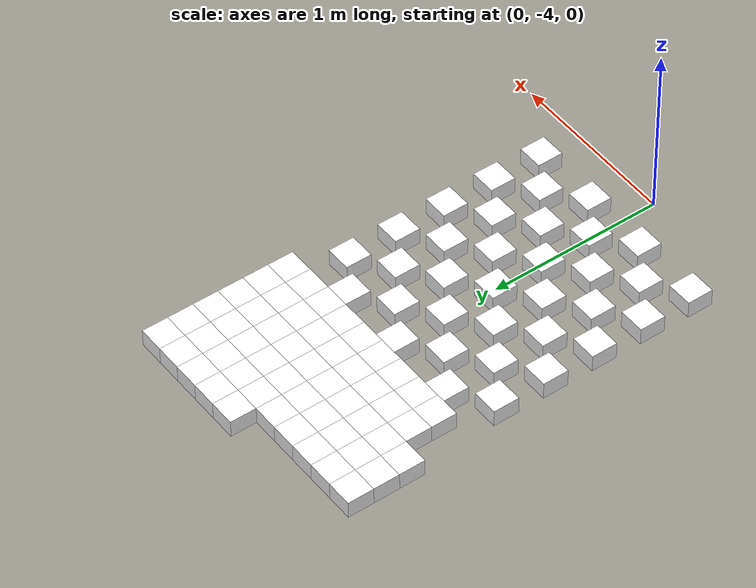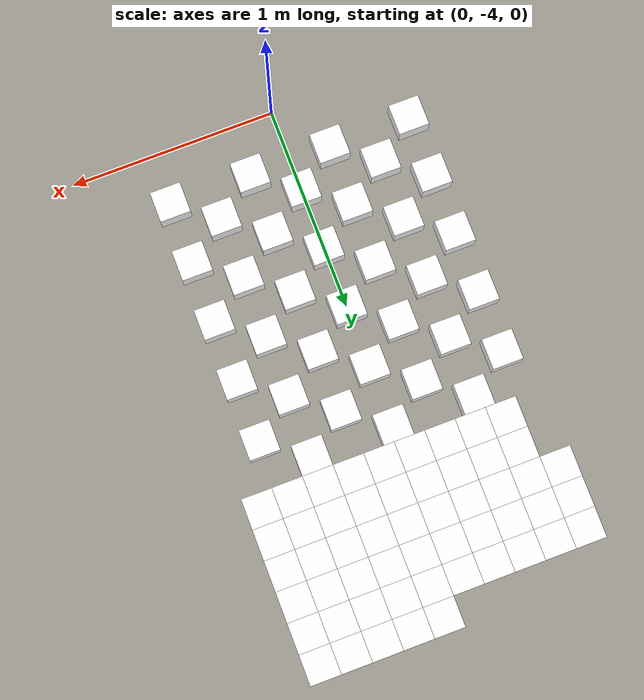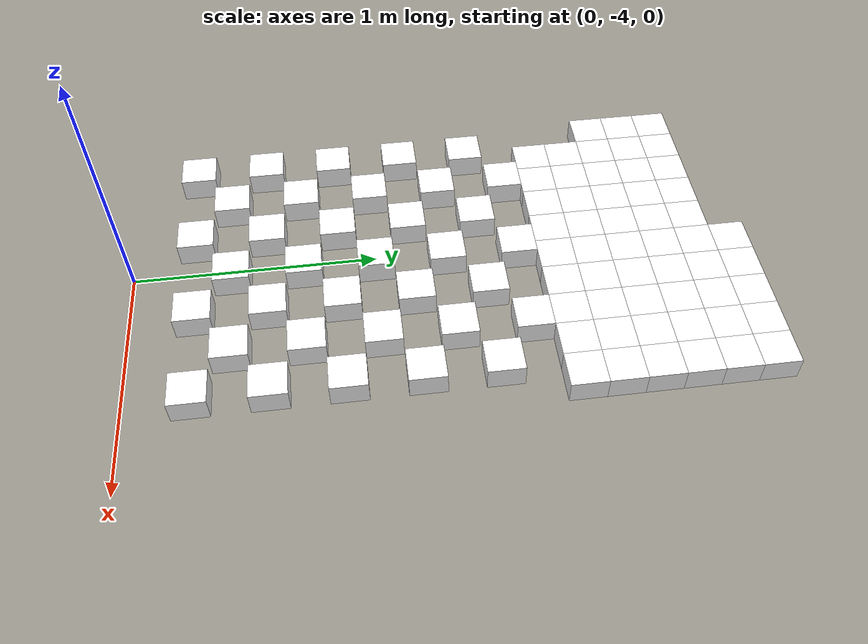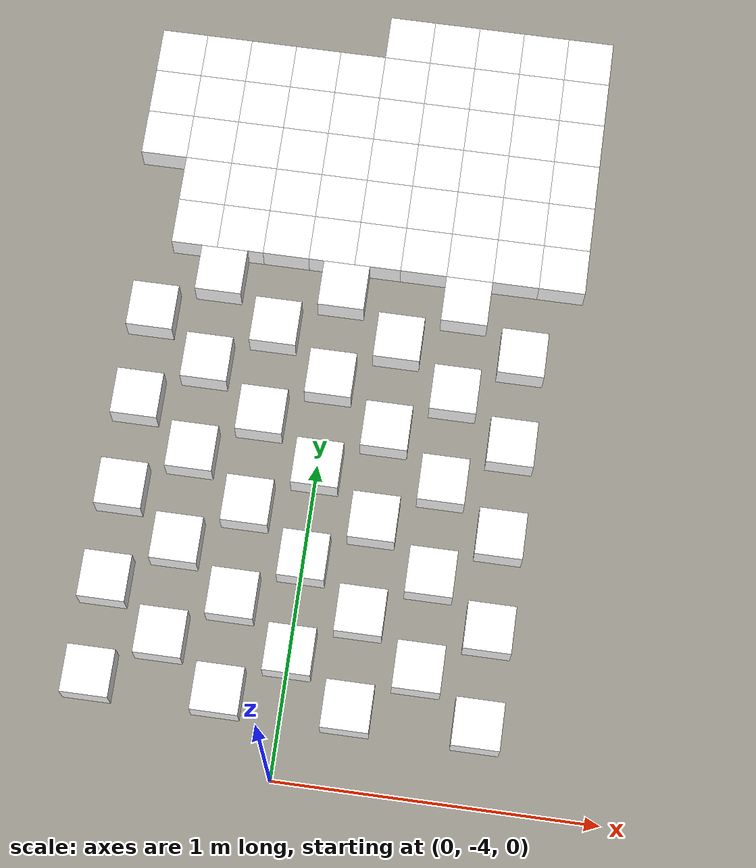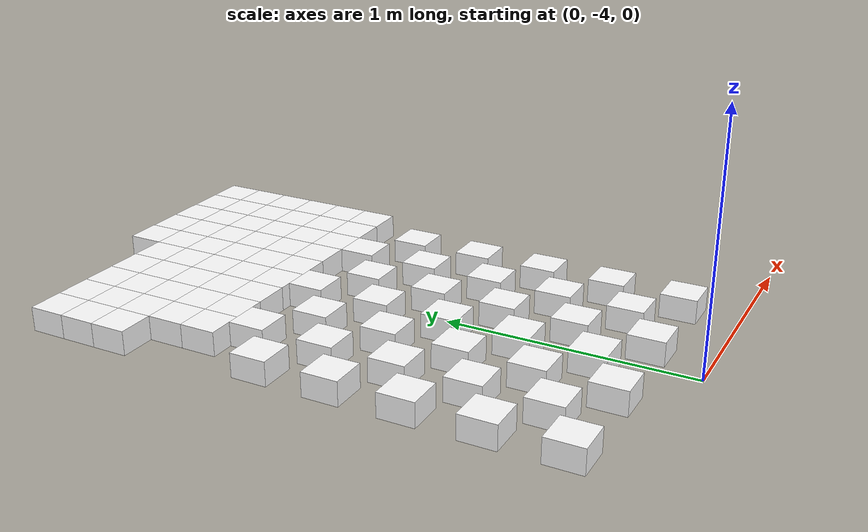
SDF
<sdf version="1.7">
 <world name="default">
  <include><uri>model://sun</uri></include>
  <model name="static_environment">
   <static>true</static>
   <link name="region_195">
    <pose>-0.6502002112096068 -1.6501201146119748 0.0 0.0 0.0 4.7123</pose>
    <collision name="region_195_collision">
     <geometry><box><size>0.15 0.15 0.1</size></box></geometry>
     <surface><friction><ode><mu>1.0</mu><mu2>1.0</mu2></ode></friction></surface>
    </collision>
    <visual name="region_195_visual">
     <geometry><box><size>0.15 0.15 0.1</size></box></geometry>
     <material><ambient>1.0 1.0 1.0 1.0</ambient><diffuse>1.0 1.0 1.0 1.0</diffuse></material>
    </visual>
   </link>
   <link name="region_196">
    <pose>-0.6502135582672928 -1.8001201140181617 0.0 0.0 0.0 4.7123</pose>
    <collision name="region_196_collision">
     <geometry><box><size>0.15 0.15 0.1</size></box></geometry>
     <surface><friction><ode><mu>1.0</mu><mu2>1.0</mu2></ode></friction></surface>
    </collision>
    <visual name="region_196_visual">
     <geometry><box><size>0.15 0.15 0.1</size></box></geometry>
     <material><ambient>1.0 1.0 1.0 1.0</ambient><diffuse>1.0 1.0 1.0 1.0</diffuse></material>
    </visual>
   </link>
   <link name="region_197">
    <pose>-0.6502269053249785 -1.9501201134243487 0.0 0.0 0.0 4.7123</pose>
    <collision name="region_197_collision">
     <geometry><box><size>0.15 0.15 0.1</size></box></geometry>
     <surface><friction><ode><mu>1.0</mu><mu2>1.0</mu2></ode></friction></surface>
    </collision>
    <visual name="region_197_visual">
     <geometry><box><size>0.15 0.15 0.1</size></box></geometry>
     <material><ambient>1.0 1.0 1.0 1.0</ambient><diffuse>1.0 1.0 1.0 1.0</diffuse></material>
    </visual>
   </link>
   <link name="region_215">
    <pose>-0.5002002118034199 -1.6501334616696606 0.0 0.0 0.0 4.7123</pose>
    <collision name="region_215_collision">
     <geometry><box><size>0.15 0.15 0.1</size></box></geometry>
     <surface><friction><ode><mu>1.0</mu><mu2>1.0</mu2></ode></friction></surface>
    </collision>
    <visual name="region_215_visual">
     <geometry><box><size>0.15 0.15 0.1</size></box></geometry>
     <material><ambient>1.0 1.0 1.0 1.0</ambient><diffuse>1.0 1.0 1.0 1.0</diffuse></material>
    </visual>
   </link>
   <link name="region_216">
    <pose>-0.5002135588611059 -1.8001334610758475 0.0 0.0 0.0 4.7123</pose>
    <collision name="region_216_collision">
     <geometry><box><size>0.15 0.15 0.1</size></box></geometry>
     <surface><friction><ode><mu>1.0</mu><mu2>1.0</mu2></ode></friction></surface>
    </collision>
    <visual name="region_216_visual">
     <geometry><box><size>0.15 0.15 0.1</size></box></geometry>
     <material><ambient>1.0 1.0 1.0 1.0</ambient><diffuse>1.0 1.0 1.0 1.0</diffuse></material>
    </visual>
   </link>
   <link name="region_217">
    <pose>-0.5002269059187916 -1.9501334604820344 0.0 0.0 0.0 4.7123</pose>
    <collision name="region_217_collision">
     <geometry><box><size>0.15 0.15 0.1</size></box></geometry>
     <surface><friction><ode><mu>1.0</mu><mu2>1.0</mu2></ode></friction></surface>
    </collision>
    <visual name="region_217_visual">
     <geometry><box><size>0.15 0.15 0.1</size></box></geometry>
     <material><ambient>1.0 1.0 1.0 1.0</ambient><diffuse>1.0 1.0 1.0 1.0</diffuse></material>
    </visual>
   </link>
   <link name="region_218">
    <pose>-0.5002402529764776 -2.100133459888221 0.0 0.0 0.0 4.7123</pose>
    <collision name="region_218_collision">
     <geometry><box><size>0.15 0.15 0.1</size></box></geometry>
     <surface><friction><ode><mu>1.0</mu><mu2>1.0</mu2></ode></friction></surface>
    </collision>
    <visual name="region_218_visual">
     <geometry><box><size>0.15 0.15 0.1</size></box></geometry>
     <material><ambient>1.0 1.0 1.0 1.0</ambient><diffuse>1.0 1.0 1.0 1.0</diffuse></material>
    </visual>
   </link>
   <link name="region_219">
    <pose>-0.5002536000341633 -2.250133459294408 0.0 0.0 0.0 4.7123</pose>
    <collision name="region_219_collision">
     <geometry><box><size>0.15 0.15 0.1</size></box></geometry>
     <surface><friction><ode><mu>1.0</mu><mu2>1.0</mu2></ode></friction></surface>
    </collision>
    <visual name="region_219_visual">
     <geometry><box><size>0.15 0.15 0.1</size></box></geometry>
     <material><ambient>1.0 1.0 1.0 1.0</ambient><diffuse>1.0 1.0 1.0 1.0</diffuse></material>
    </visual>
   </link>
   <link name="region_235">
    <pose>-0.3502002123972332 -1.6501468087273463 0.0 0.0 0.0 4.7123</pose>
    <collision name="region_235_collision">
     <geometry><box><size>0.15 0.15 0.1</size></box></geometry>
     <surface><friction><ode><mu>1.0</mu><mu2>1.0</mu2></ode></friction></surface>
    </collision>
    <visual name="region_235_visual">
     <geometry><box><size>0.15 0.15 0.1</size></box></geometry>
     <material><ambient>1.0 1.0 1.0 1.0</ambient><diffuse>1.0 1.0 1.0 1.0</diffuse></material>
    </visual>
   </link>
   <link name="region_236">
    <pose>-0.35021355945491917 -1.8001468081335332 0.0 0.0 0.0 4.7123</pose>
    <collision name="region_236_collision">
     <geometry><box><size>0.15 0.15 0.1</size></box></geometry>
     <surface><friction><ode><mu>1.0</mu><mu2>1.0</mu2></ode></friction></surface>
    </collision>
    <visual name="region_236_visual">
     <geometry><box><size>0.15 0.15 0.1</size></box></geometry>
     <material><ambient>1.0 1.0 1.0 1.0</ambient><diffuse>1.0 1.0 1.0 1.0</diffuse></material>
    </visual>
   </link>
   <link name="region_237">
    <pose>-0.3502269065126049 -1.9501468075397201 0.0 0.0 0.0 4.7123</pose>
    <collision name="region_237_collision">
     <geometry><box><size>0.15 0.15 0.1</size></box></geometry>
     <surface><friction><ode><mu>1.0</mu><mu2>1.0</mu2></ode></friction></surface>
    </collision>
    <visual name="region_237_visual">
     <geometry><box><size>0.15 0.15 0.1</size></box></geometry>
     <material><ambient>1.0 1.0 1.0 1.0</ambient><diffuse>1.0 1.0 1.0 1.0</diffuse></material>
    </visual>
   </link>
   <link name="region_238">
    <pose>-0.35024025357029087 -2.1001468069459066 0.0 0.0 0.0 4.7123</pose>
    <collision name="region_238_collision">
     <geometry><box><size>0.15 0.15 0.1</size></box></geometry>
     <surface><friction><ode><mu>1.0</mu><mu2>1.0</mu2></ode></friction></surface>
    </collision>
    <visual name="region_238_visual">
     <geometry><box><size>0.15 0.15 0.1</size></box></geometry>
     <material><ambient>1.0 1.0 1.0 1.0</ambient><diffuse>1.0 1.0 1.0 1.0</diffuse></material>
    </visual>
   </link>
   <link name="region_239">
    <pose>-0.3502536006279766 -2.2501468063520935 0.0 0.0 0.0 4.7123</pose>
    <collision name="region_239_collision">
     <geometry><box><size>0.15 0.15 0.1</size></box></geometry>
     <surface><friction><ode><mu>1.0</mu><mu2>1.0</mu2></ode></friction></surface>
    </collision>
    <visual name="region_239_visual">
     <geometry><box><size>0.15 0.15 0.1</size></box></geometry>
     <material><ambient>1.0 1.0 1.0 1.0</ambient><diffuse>1.0 1.0 1.0 1.0</diffuse></material>
    </visual>
   </link>
   <link name="region_255">
    <pose>-0.2002002129910465 -1.6501601557850325 0.0 0.0 0.0 4.7123</pose>
    <collision name="region_255_collision">
     <geometry><box><size>0.15 0.15 0.1</size></box></geometry>
     <surface><friction><ode><mu>1.0</mu><mu2>1.0</mu2></ode></friction></surface>
    </collision>
    <visual name="region_255_visual">
     <geometry><box><size>0.15 0.15 0.1</size></box></geometry>
     <material><ambient>1.0 1.0 1.0 1.0</ambient><diffuse>1.0 1.0 1.0 1.0</diffuse></material>
    </visual>
   </link>
   <link name="region_256">
    <pose>-0.20021356004873248 -1.8001601551912194 0.0 0.0 0.0 4.7123</pose>
    <collision name="region_256_collision">
     <geometry><box><size>0.15 0.15 0.1</size></box></geometry>
     <surface><friction><ode><mu>1.0</mu><mu2>1.0</mu2></ode></friction></surface>
    </collision>
    <visual name="region_256_visual">
     <geometry><box><size>0.15 0.15 0.1</size></box></geometry>
     <material><ambient>1.0 1.0 1.0 1.0</ambient><diffuse>1.0 1.0 1.0 1.0</diffuse></material>
    </visual>
   </link>
   <link name="region_257">
    <pose>-0.20022690710641822 -1.9501601545974063 0.0 0.0 0.0 4.7123</pose>
    <collision name="region_257_collision">
     <geometry><box><size>0.15 0.15 0.1</size></box></geometry>
     <surface><friction><ode><mu>1.0</mu><mu2>1.0</mu2></ode></friction></surface>
    </collision>
    <visual name="region_257_visual">
     <geometry><box><size>0.15 0.15 0.1</size></box></geometry>
     <material><ambient>1.0 1.0 1.0 1.0</ambient><diffuse>1.0 1.0 1.0 1.0</diffuse></material>
    </visual>
   </link>
   <link name="region_258">
    <pose>-0.20024025416410418 -2.100160154003593 0.0 0.0 0.0 4.7123</pose>
    <collision name="region_258_collision">
     <geometry><box><size>0.15 0.15 0.1</size></box></geometry>
     <surface><friction><ode><mu>1.0</mu><mu2>1.0</mu2></ode></friction></surface>
    </collision>
    <visual name="region_258_visual">
     <geometry><box><size>0.15 0.15 0.1</size></box></geometry>
     <material><ambient>1.0 1.0 1.0 1.0</ambient><diffuse>1.0 1.0 1.0 1.0</diffuse></material>
    </visual>
   </link>
   <link name="region_259">
    <pose>-0.20025360122178992 -2.2501601534097797 0.0 0.0 0.0 4.7123</pose>
    <collision name="region_259_collision">
     <geometry><box><size>0.15 0.15 0.1</size></box></geometry>
     <surface><friction><ode><mu>1.0</mu><mu2>1.0</mu2></ode></friction></surface>
    </collision>
    <visual name="region_259_visual">
     <geometry><box><size>0.15 0.15 0.1</size></box></geometry>
     <material><ambient>1.0 1.0 1.0 1.0</ambient><diffuse>1.0 1.0 1.0 1.0</diffuse></material>
    </visual>
   </link>
   <link name="region_275">
    <pose>-0.05020021358485982 -1.6501735028427182 0.0 0.0 0.0 4.7123</pose>
    <collision name="region_275_collision">
     <geometry><box><size>0.15 0.15 0.1</size></box></geometry>
     <surface><friction><ode><mu>1.0</mu><mu2>1.0</mu2></ode></friction></surface>
    </collision>
    <visual name="region_275_visual">
     <geometry><box><size>0.15 0.15 0.1</size></box></geometry>
     <material><ambient>1.0 1.0 1.0 1.0</ambient><diffuse>1.0 1.0 1.0 1.0</diffuse></material>
    </visual>
   </link>
   <link name="region_276">
    <pose>-0.050213560642545785 -1.8001735022489052 0.0 0.0 0.0 4.7123</pose>
    <collision name="region_276_collision">
     <geometry><box><size>0.15 0.15 0.1</size></box></geometry>
     <surface><friction><ode><mu>1.0</mu><mu2>1.0</mu2></ode></friction></surface>
    </collision>
    <visual name="region_276_visual">
     <geometry><box><size>0.15 0.15 0.1</size></box></geometry>
     <material><ambient>1.0 1.0 1.0 1.0</ambient><diffuse>1.0 1.0 1.0 1.0</diffuse></material>
    </visual>
   </link>
   <link name="region_277">
    <pose>-0.05022690770023153 -1.950173501655092 0.0 0.0 0.0 4.7123</pose>
    <collision name="region_277_collision">
     <geometry><box><size>0.15 0.15 0.1</size></box></geometry>
     <surface><friction><ode><mu>1.0</mu><mu2>1.0</mu2></ode></friction></surface>
    </collision>
    <visual name="region_277_visual">
     <geometry><box><size>0.15 0.15 0.1</size></box></geometry>
     <material><ambient>1.0 1.0 1.0 1.0</ambient><diffuse>1.0 1.0 1.0 1.0</diffuse></material>
    </visual>
   </link>
   <link name="region_278">
    <pose>-0.05024025475791749 -2.1001735010612785 0.0 0.0 0.0 4.7123</pose>
    <collision name="region_278_collision">
     <geometry><box><size>0.15 0.15 0.1</size></box></geometry>
     <surface><friction><ode><mu>1.0</mu><mu2>1.0</mu2></ode></friction></surface>
    </collision>
    <visual name="region_278_visual">
     <geometry><box><size>0.15 0.15 0.1</size></box></geometry>
     <material><ambient>1.0 1.0 1.0 1.0</ambient><diffuse>1.0 1.0 1.0 1.0</diffuse></material>
    </visual>
   </link>
   <link name="region_279">
    <pose>-0.05025360181560323 -2.2501735004674654 0.0 0.0 0.0 4.7123</pose>
    <collision name="region_279_collision">
     <geometry><box><size>0.15 0.15 0.1</size></box></geometry>
     <surface><friction><ode><mu>1.0</mu><mu2>1.0</mu2></ode></friction></surface>
    </collision>
    <visual name="region_279_visual">
     <geometry><box><size>0.15 0.15 0.1</size></box></geometry>
     <material><ambient>1.0 1.0 1.0 1.0</ambient><diffuse>1.0 1.0 1.0 1.0</diffuse></material>
    </visual>
   </link>
   <link name="region_294">
    <pose>0.09981313287901328 -1.5001868504942175 0.0 0.0 0.0 4.7123</pose>
    <collision name="region_294_collision">
     <geometry><box><size>0.15 0.15 0.1</size></box></geometry>
     <surface><friction><ode><mu>1.0</mu><mu2>1.0</mu2></ode></friction></surface>
    </collision>
    <visual name="region_294_visual">
     <geometry><box><size>0.15 0.15 0.1</size></box></geometry>
     <material><ambient>1.0 1.0 1.0 1.0</ambient><diffuse>1.0 1.0 1.0 1.0</diffuse></material>
    </visual>
   </link>
   <link name="region_295">
    <pose>0.09979978582132709 -1.650186849900404 0.0 0.0 0.0 4.7123</pose>
    <collision name="region_295_collision">
     <geometry><box><size>0.15 0.15 0.1</size></box></geometry>
     <surface><friction><ode><mu>1.0</mu><mu2>1.0</mu2></ode></friction></surface>
    </collision>
    <visual name="region_295_visual">
     <geometry><box><size>0.15 0.15 0.1</size></box></geometry>
     <material><ambient>1.0 1.0 1.0 1.0</ambient><diffuse>1.0 1.0 1.0 1.0</diffuse></material>
    </visual>
   </link>
   <link name="region_296">
    <pose>0.09978643876364135 -1.800186849306591 0.0 0.0 0.0 4.7123</pose>
    <collision name="region_296_collision">
     <geometry><box><size>0.15 0.15 0.1</size></box></geometry>
     <surface><friction><ode><mu>1.0</mu><mu2>1.0</mu2></ode></friction></surface>
    </collision>
    <visual name="region_296_visual">
     <geometry><box><size>0.15 0.15 0.1</size></box></geometry>
     <material><ambient>1.0 1.0 1.0 1.0</ambient><diffuse>1.0 1.0 1.0 1.0</diffuse></material>
    </visual>
   </link>
   <link name="region_297">
    <pose>0.09977309170595561 -1.9501868487127778 0.0 0.0 0.0 4.7123</pose>
    <collision name="region_297_collision">
     <geometry><box><size>0.15 0.15 0.1</size></box></geometry>
     <surface><friction><ode><mu>1.0</mu><mu2>1.0</mu2></ode></friction></surface>
    </collision>
    <visual name="region_297_visual">
     <geometry><box><size>0.15 0.15 0.1</size></box></geometry>
     <material><ambient>1.0 1.0 1.0 1.0</ambient><diffuse>1.0 1.0 1.0 1.0</diffuse></material>
    </visual>
   </link>
   <link name="region_298">
    <pose>0.09975974464826987 -2.1001868481189643 0.0 0.0 0.0 4.7123</pose>
    <collision name="region_298_collision">
     <geometry><box><size>0.15 0.15 0.1</size></box></geometry>
     <surface><friction><ode><mu>1.0</mu><mu2>1.0</mu2></ode></friction></surface>
    </collision>
    <visual name="region_298_visual">
     <geometry><box><size>0.15 0.15 0.1</size></box></geometry>
     <material><ambient>1.0 1.0 1.0 1.0</ambient><diffuse>1.0 1.0 1.0 1.0</diffuse></material>
    </visual>
   </link>
   <link name="region_299">
    <pose>0.09974639759058368 -2.250186847525151 0.0 0.0 0.0 4.7123</pose>
    <collision name="region_299_collision">
     <geometry><box><size>0.15 0.15 0.1</size></box></geometry>
     <surface><friction><ode><mu>1.0</mu><mu2>1.0</mu2></ode></friction></surface>
    </collision>
    <visual name="region_299_visual">
     <geometry><box><size>0.15 0.15 0.1</size></box></geometry>
     <material><ambient>1.0 1.0 1.0 1.0</ambient><diffuse>1.0 1.0 1.0 1.0</diffuse></material>
    </visual>
   </link>
   <link name="region_314">
    <pose>0.24981313228519975 -1.5002001975519037 0.0 0.0 0.0 4.7123</pose>
    <collision name="region_314_collision">
     <geometry><box><size>0.15 0.15 0.1</size></box></geometry>
     <surface><friction><ode><mu>1.0</mu><mu2>1.0</mu2></ode></friction></surface>
    </collision>
    <visual name="region_314_visual">
     <geometry><box><size>0.15 0.15 0.1</size></box></geometry>
     <material><ambient>1.0 1.0 1.0 1.0</ambient><diffuse>1.0 1.0 1.0 1.0</diffuse></material>
    </visual>
   </link>
   <link name="region_315">
    <pose>0.24979978522751356 -1.6502001969580902 0.0 0.0 0.0 4.7123</pose>
    <collision name="region_315_collision">
     <geometry><box><size>0.15 0.15 0.1</size></box></geometry>
     <surface><friction><ode><mu>1.0</mu><mu2>1.0</mu2></ode></friction></surface>
    </collision>
    <visual name="region_315_visual">
     <geometry><box><size>0.15 0.15 0.1</size></box></geometry>
     <material><ambient>1.0 1.0 1.0 1.0</ambient><diffuse>1.0 1.0 1.0 1.0</diffuse></material>
    </visual>
   </link>
   <link name="region_316">
    <pose>0.24978643816982782 -1.800200196364277 0.0 0.0 0.0 4.7123</pose>
    <collision name="region_316_collision">
     <geometry><box><size>0.15 0.15 0.1</size></box></geometry>
     <surface><friction><ode><mu>1.0</mu><mu2>1.0</mu2></ode></friction></surface>
    </collision>
    <visual name="region_316_visual">
     <geometry><box><size>0.15 0.15 0.1</size></box></geometry>
     <material><ambient>1.0 1.0 1.0 1.0</ambient><diffuse>1.0 1.0 1.0 1.0</diffuse></material>
    </visual>
   </link>
   <link name="region_317">
    <pose>0.24977309111214208 -1.950200195770464 0.0 0.0 0.0 4.7123</pose>
    <collision name="region_317_collision">
     <geometry><box><size>0.15 0.15 0.1</size></box></geometry>
     <surface><friction><ode><mu>1.0</mu><mu2>1.0</mu2></ode></friction></surface>
    </collision>
    <visual name="region_317_visual">
     <geometry><box><size>0.15 0.15 0.1</size></box></geometry>
     <material><ambient>1.0 1.0 1.0 1.0</ambient><diffuse>1.0 1.0 1.0 1.0</diffuse></material>
    </visual>
   </link>
   <link name="region_318">
    <pose>0.24975974405445633 -2.1002001951766505 0.0 0.0 0.0 4.7123</pose>
    <collision name="region_318_collision">
     <geometry><box><size>0.15 0.15 0.1</size></box></geometry>
     <surface><friction><ode><mu>1.0</mu><mu2>1.0</mu2></ode></friction></surface>
    </collision>
    <visual name="region_318_visual">
     <geometry><box><size>0.15 0.15 0.1</size></box></geometry>
     <material><ambient>1.0 1.0 1.0 1.0</ambient><diffuse>1.0 1.0 1.0 1.0</diffuse></material>
    </visual>
   </link>
   <link name="region_319">
    <pose>0.24974639699677015 -2.2502001945828374 0.0 0.0 0.0 4.7123</pose>
    <collision name="region_319_collision">
     <geometry><box><size>0.15 0.15 0.1</size></box></geometry>
     <surface><friction><ode><mu>1.0</mu><mu2>1.0</mu2></ode></friction></surface>
    </collision>
    <visual name="region_319_visual">
     <geometry><box><size>0.15 0.15 0.1</size></box></geometry>
     <material><ambient>1.0 1.0 1.0 1.0</ambient><diffuse>1.0 1.0 1.0 1.0</diffuse></material>
    </visual>
   </link>
   <link name="region_334">
    <pose>0.39981313169138666 -1.5002135446095894 0.0 0.0 0.0 4.7123</pose>
    <collision name="region_334_collision">
     <geometry><box><size>0.15 0.15 0.1</size></box></geometry>
     <surface><friction><ode><mu>1.0</mu><mu2>1.0</mu2></ode></friction></surface>
    </collision>
    <visual name="region_334_visual">
     <geometry><box><size>0.15 0.15 0.1</size></box></geometry>
     <material><ambient>1.0 1.0 1.0 1.0</ambient><diffuse>1.0 1.0 1.0 1.0</diffuse></material>
    </visual>
   </link>
   <link name="region_335">
    <pose>0.3997997846337005 -1.650213544015776 0.0 0.0 0.0 4.7123</pose>
    <collision name="region_335_collision">
     <geometry><box><size>0.15 0.15 0.1</size></box></geometry>
     <surface><friction><ode><mu>1.0</mu><mu2>1.0</mu2></ode></friction></surface>
    </collision>
    <visual name="region_335_visual">
     <geometry><box><size>0.15 0.15 0.1</size></box></geometry>
     <material><ambient>1.0 1.0 1.0 1.0</ambient><diffuse>1.0 1.0 1.0 1.0</diffuse></material>
    </visual>
   </link>
   <link name="region_336">
    <pose>0.39978643757601473 -1.8002135434219628 0.0 0.0 0.0 4.7123</pose>
    <collision name="region_336_collision">
     <geometry><box><size>0.15 0.15 0.1</size></box></geometry>
     <surface><friction><ode><mu>1.0</mu><mu2>1.0</mu2></ode></friction></surface>
    </collision>
    <visual name="region_336_visual">
     <geometry><box><size>0.15 0.15 0.1</size></box></geometry>
     <material><ambient>1.0 1.0 1.0 1.0</ambient><diffuse>1.0 1.0 1.0 1.0</diffuse></material>
    </visual>
   </link>
   <link name="region_337">
    <pose>0.399773090518329 -1.9502135428281497 0.0 0.0 0.0 4.7123</pose>
    <collision name="region_337_collision">
     <geometry><box><size>0.15 0.15 0.1</size></box></geometry>
     <surface><friction><ode><mu>1.0</mu><mu2>1.0</mu2></ode></friction></surface>
    </collision>
    <visual name="region_337_visual">
     <geometry><box><size>0.15 0.15 0.1</size></box></geometry>
     <material><ambient>1.0 1.0 1.0 1.0</ambient><diffuse>1.0 1.0 1.0 1.0</diffuse></material>
    </visual>
   </link>
   <link name="region_338">
    <pose>0.39975974346064325 -2.100213542234336 0.0 0.0 0.0 4.7123</pose>
    <collision name="region_338_collision">
     <geometry><box><size>0.15 0.15 0.1</size></box></geometry>
     <surface><friction><ode><mu>1.0</mu><mu2>1.0</mu2></ode></friction></surface>
    </collision>
    <visual name="region_338_visual">
     <geometry><box><size>0.15 0.15 0.1</size></box></geometry>
     <material><ambient>1.0 1.0 1.0 1.0</ambient><diffuse>1.0 1.0 1.0 1.0</diffuse></material>
    </visual>
   </link>
   <link name="region_339">
    <pose>0.39974639640295706 -2.250213541640523 0.0 0.0 0.0 4.7123</pose>
    <collision name="region_339_collision">
     <geometry><box><size>0.15 0.15 0.1</size></box></geometry>
     <surface><friction><ode><mu>1.0</mu><mu2>1.0</mu2></ode></friction></surface>
    </collision>
    <visual name="region_339_visual">
     <geometry><box><size>0.15 0.15 0.1</size></box></geometry>
     <material><ambient>1.0 1.0 1.0 1.0</ambient><diffuse>1.0 1.0 1.0 1.0</diffuse></material>
    </visual>
   </link>
   <link name="region_354">
    <pose>0.5498131310975736 -1.5002268916672752 0.0 0.0 0.0 4.7123</pose>
    <collision name="region_354_collision">
     <geometry><box><size>0.15 0.15 0.1</size></box></geometry>
     <surface><friction><ode><mu>1.0</mu><mu2>1.0</mu2></ode></friction></surface>
    </collision>
    <visual name="region_354_visual">
     <geometry><box><size>0.15 0.15 0.1</size></box></geometry>
     <material><ambient>1.0 1.0 1.0 1.0</ambient><diffuse>1.0 1.0 1.0 1.0</diffuse></material>
    </visual>
   </link>
   <link name="region_355">
    <pose>0.5497997840398874 -1.6502268910734617 0.0 0.0 0.0 4.7123</pose>
    <collision name="region_355_collision">
     <geometry><box><size>0.15 0.15 0.1</size></box></geometry>
     <surface><friction><ode><mu>1.0</mu><mu2>1.0</mu2></ode></friction></surface>
    </collision>
    <visual name="region_355_visual">
     <geometry><box><size>0.15 0.15 0.1</size></box></geometry>
     <material><ambient>1.0 1.0 1.0 1.0</ambient><diffuse>1.0 1.0 1.0 1.0</diffuse></material>
    </visual>
   </link>
   <link name="region_356">
    <pose>0.5497864369822016 -1.8002268904796486 0.0 0.0 0.0 4.7123</pose>
    <collision name="region_356_collision">
     <geometry><box><size>0.15 0.15 0.1</size></box></geometry>
     <surface><friction><ode><mu>1.0</mu><mu2>1.0</mu2></ode></friction></surface>
    </collision>
    <visual name="region_356_visual">
     <geometry><box><size>0.15 0.15 0.1</size></box></geometry>
     <material><ambient>1.0 1.0 1.0 1.0</ambient><diffuse>1.0 1.0 1.0 1.0</diffuse></material>
    </visual>
   </link>
   <link name="region_357">
    <pose>0.5497730899245159 -1.9502268898858355 0.0 0.0 0.0 4.7123</pose>
    <collision name="region_357_collision">
     <geometry><box><size>0.15 0.15 0.1</size></box></geometry>
     <surface><friction><ode><mu>1.0</mu><mu2>1.0</mu2></ode></friction></surface>
    </collision>
    <visual name="region_357_visual">
     <geometry><box><size>0.15 0.15 0.1</size></box></geometry>
     <material><ambient>1.0 1.0 1.0 1.0</ambient><diffuse>1.0 1.0 1.0 1.0</diffuse></material>
    </visual>
   </link>
   <link name="region_358">
    <pose>0.5497597428668302 -2.100226889292022 0.0 0.0 0.0 4.7123</pose>
    <collision name="region_358_collision">
     <geometry><box><size>0.15 0.15 0.1</size></box></geometry>
     <surface><friction><ode><mu>1.0</mu><mu2>1.0</mu2></ode></friction></surface>
    </collision>
    <visual name="region_358_visual">
     <geometry><box><size>0.15 0.15 0.1</size></box></geometry>
     <material><ambient>1.0 1.0 1.0 1.0</ambient><diffuse>1.0 1.0 1.0 1.0</diffuse></material>
    </visual>
   </link>
   <link name="region_359">
    <pose>0.549746395809144 -2.250226888698209 0.0 0.0 0.0 4.7123</pose>
    <collision name="region_359_collision">
     <geometry><box><size>0.15 0.15 0.1</size></box></geometry>
     <surface><friction><ode><mu>1.0</mu><mu2>1.0</mu2></ode></friction></surface>
    </collision>
    <visual name="region_359_visual">
     <geometry><box><size>0.15 0.15 0.1</size></box></geometry>
     <material><ambient>1.0 1.0 1.0 1.0</ambient><diffuse>1.0 1.0 1.0 1.0</diffuse></material>
    </visual>
   </link>
   <link name="region_374">
    <pose>0.69981313050376 -1.500240238724961 0.0 0.0 0.0 4.7123</pose>
    <collision name="region_374_collision">
     <geometry><box><size>0.15 0.15 0.1</size></box></geometry>
     <surface><friction><ode><mu>1.0</mu><mu2>1.0</mu2></ode></friction></surface>
    </collision>
    <visual name="region_374_visual">
     <geometry><box><size>0.15 0.15 0.1</size></box></geometry>
     <material><ambient>1.0 1.0 1.0 1.0</ambient><diffuse>1.0 1.0 1.0 1.0</diffuse></material>
    </visual>
   </link>
   <link name="region_375">
    <pose>0.6997997834460739 -1.6502402381311474 0.0 0.0 0.0 4.7123</pose>
    <collision name="region_375_collision">
     <geometry><box><size>0.15 0.15 0.1</size></box></geometry>
     <surface><friction><ode><mu>1.0</mu><mu2>1.0</mu2></ode></friction></surface>
    </collision>
    <visual name="region_375_visual">
     <geometry><box><size>0.15 0.15 0.1</size></box></geometry>
     <material><ambient>1.0 1.0 1.0 1.0</ambient><diffuse>1.0 1.0 1.0 1.0</diffuse></material>
    </visual>
   </link>
   <link name="region_376">
    <pose>0.6997864363883881 -1.8002402375373343 0.0 0.0 0.0 4.7123</pose>
    <collision name="region_376_collision">
     <geometry><box><size>0.15 0.15 0.1</size></box></geometry>
     <surface><friction><ode><mu>1.0</mu><mu2>1.0</mu2></ode></friction></surface>
    </collision>
    <visual name="region_376_visual">
     <geometry><box><size>0.15 0.15 0.1</size></box></geometry>
     <material><ambient>1.0 1.0 1.0 1.0</ambient><diffuse>1.0 1.0 1.0 1.0</diffuse></material>
    </visual>
   </link>
   <link name="region_377">
    <pose>0.6997730893307024 -1.9502402369435212 0.0 0.0 0.0 4.7123</pose>
    <collision name="region_377_collision">
     <geometry><box><size>0.15 0.15 0.1</size></box></geometry>
     <surface><friction><ode><mu>1.0</mu><mu2>1.0</mu2></ode></friction></surface>
    </collision>
    <visual name="region_377_visual">
     <geometry><box><size>0.15 0.15 0.1</size></box></geometry>
     <material><ambient>1.0 1.0 1.0 1.0</ambient><diffuse>1.0 1.0 1.0 1.0</diffuse></material>
    </visual>
   </link>
   <link name="region_378">
    <pose>0.6997597422730166 -2.1002402363497077 0.0 0.0 0.0 4.7123</pose>
    <collision name="region_378_collision">
     <geometry><box><size>0.15 0.15 0.1</size></box></geometry>
     <surface><friction><ode><mu>1.0</mu><mu2>1.0</mu2></ode></friction></surface>
    </collision>
    <visual name="region_378_visual">
     <geometry><box><size>0.15 0.15 0.1</size></box></geometry>
     <material><ambient>1.0 1.0 1.0 1.0</ambient><diffuse>1.0 1.0 1.0 1.0</diffuse></material>
    </visual>
   </link>
   <link name="region_379">
    <pose>0.6997463952153304 -2.2502402357558946 0.0 0.0 0.0 4.7123</pose>
    <collision name="region_379_collision">
     <geometry><box><size>0.15 0.15 0.1</size></box></geometry>
     <surface><friction><ode><mu>1.0</mu><mu2>1.0</mu2></ode></friction></surface>
    </collision>
    <visual name="region_379_visual">
     <geometry><box><size>0.15 0.15 0.1</size></box></geometry>
     <material><ambient>1.0 1.0 1.0 1.0</ambient><diffuse>1.0 1.0 1.0 1.0</diffuse></material>
    </visual>
   </link>
   <link name="region_835">
    <pose>-0.6002802937536598 -2.550124560068325 0.0 0.0 0.0 4.7123</pose>
    <collision name="region_835_collision">
     <geometry><box><size>0.15 0.15 0.1</size></box></geometry>
     <surface><friction><ode><mu>1.0</mu><mu2>1.0</mu2></ode></friction></surface>
    </collision>
    <visual name="region_835_visual">
     <geometry><box><size>0.15 0.15 0.1</size></box></geometry>
     <material><ambient>1.0 1.0 1.0 1.0</ambient><diffuse>1.0 1.0 1.0 1.0</diffuse></material>
    </visual>
   </link>
   <link name="region_836">
    <pose>-0.6003069878690315 -2.8501245588806983 0.0 0.0 0.0 4.7123</pose>
    <collision name="region_836_collision">
     <geometry><box><size>0.15 0.15 0.1</size></box></geometry>
     <surface><friction><ode><mu>1.0</mu><mu2>1.0</mu2></ode></friction></surface>
    </collision>
    <visual name="region_836_visual">
     <geometry><box><size>0.15 0.15 0.1</size></box></geometry>
     <material><ambient>1.0 1.0 1.0 1.0</ambient><diffuse>1.0 1.0 1.0 1.0</diffuse></material>
    </visual>
   </link>
   <link name="region_837">
    <pose>-0.6003336819844032 -3.150124557693072 0.0 0.0 0.0 4.7123</pose>
    <collision name="region_837_collision">
     <geometry><box><size>0.15 0.15 0.1</size></box></geometry>
     <surface><friction><ode><mu>1.0</mu><mu2>1.0</mu2></ode></friction></surface>
    </collision>
    <visual name="region_837_visual">
     <geometry><box><size>0.15 0.15 0.1</size></box></geometry>
     <material><ambient>1.0 1.0 1.0 1.0</ambient><diffuse>1.0 1.0 1.0 1.0</diffuse></material>
    </visual>
   </link>
   <link name="region_838">
    <pose>-0.6003603760997749 -3.4501245565054455 0.0 0.0 0.0 4.7123</pose>
    <collision name="region_838_collision">
     <geometry><box><size>0.15 0.15 0.1</size></box></geometry>
     <surface><friction><ode><mu>1.0</mu><mu2>1.0</mu2></ode></friction></surface>
    </collision>
    <visual name="region_838_visual">
     <geometry><box><size>0.15 0.15 0.1</size></box></geometry>
     <material><ambient>1.0 1.0 1.0 1.0</ambient><diffuse>1.0 1.0 1.0 1.0</diffuse></material>
    </visual>
   </link>
   <link name="region_839">
    <pose>-0.6003870702151468 -3.75012455531782 0.0 0.0 0.0 4.7123</pose>
    <collision name="region_839_collision">
     <geometry><box><size>0.15 0.15 0.1</size></box></geometry>
     <surface><friction><ode><mu>1.0</mu><mu2>1.0</mu2></ode></friction></surface>
    </collision>
    <visual name="region_839_visual">
     <geometry><box><size>0.15 0.15 0.1</size></box></geometry>
     <material><ambient>1.0 1.0 1.0 1.0</ambient><diffuse>1.0 1.0 1.0 1.0</diffuse></material>
    </visual>
   </link>
   <link name="region_840">
    <pose>-0.40026694748772473 -2.4001423567390523 0.0 0.0 0.0 4.7123</pose>
    <collision name="region_840_collision">
     <geometry><box><size>0.15 0.15 0.1</size></box></geometry>
     <surface><friction><ode><mu>1.0</mu><mu2>1.0</mu2></ode></friction></surface>
    </collision>
    <visual name="region_840_visual">
     <geometry><box><size>0.15 0.15 0.1</size></box></geometry>
     <material><ambient>1.0 1.0 1.0 1.0</ambient><diffuse>1.0 1.0 1.0 1.0</diffuse></material>
    </visual>
   </link>
   <link name="region_841">
    <pose>-0.40029364160309644 -2.700142355551426 0.0 0.0 0.0 4.7123</pose>
    <collision name="region_841_collision">
     <geometry><box><size>0.15 0.15 0.1</size></box></geometry>
     <surface><friction><ode><mu>1.0</mu><mu2>1.0</mu2></ode></friction></surface>
    </collision>
    <visual name="region_841_visual">
     <geometry><box><size>0.15 0.15 0.1</size></box></geometry>
     <material><ambient>1.0 1.0 1.0 1.0</ambient><diffuse>1.0 1.0 1.0 1.0</diffuse></material>
    </visual>
   </link>
   <link name="region_842">
    <pose>-0.40032033571846815 -3.0001423543637995 0.0 0.0 0.0 4.7123</pose>
    <collision name="region_842_collision">
     <geometry><box><size>0.15 0.15 0.1</size></box></geometry>
     <surface><friction><ode><mu>1.0</mu><mu2>1.0</mu2></ode></friction></surface>
    </collision>
    <visual name="region_842_visual">
     <geometry><box><size>0.15 0.15 0.1</size></box></geometry>
     <material><ambient>1.0 1.0 1.0 1.0</ambient><diffuse>1.0 1.0 1.0 1.0</diffuse></material>
    </visual>
   </link>
   <link name="region_843">
    <pose>-0.4003470298338401 -3.300142353176173 0.0 0.0 0.0 4.7123</pose>
    <collision name="region_843_collision">
     <geometry><box><size>0.15 0.15 0.1</size></box></geometry>
     <surface><friction><ode><mu>1.0</mu><mu2>1.0</mu2></ode></friction></surface>
    </collision>
    <visual name="region_843_visual">
     <geometry><box><size>0.15 0.15 0.1</size></box></geometry>
     <material><ambient>1.0 1.0 1.0 1.0</ambient><diffuse>1.0 1.0 1.0 1.0</diffuse></material>
    </visual>
   </link>
   <link name="region_844">
    <pose>-0.4003737239492118 -3.600142351988548 0.0 0.0 0.0 4.7123</pose>
    <collision name="region_844_collision">
     <geometry><box><size>0.15 0.15 0.1</size></box></geometry>
     <surface><friction><ode><mu>1.0</mu><mu2>1.0</mu2></ode></friction></surface>
    </collision>
    <visual name="region_844_visual">
     <geometry><box><size>0.15 0.15 0.1</size></box></geometry>
     <material><ambient>1.0 1.0 1.0 1.0</ambient><diffuse>1.0 1.0 1.0 1.0</diffuse></material>
    </visual>
   </link>
   <link name="region_845">
    <pose>-0.20028029533716163 -2.550160152222154 0.0 0.0 0.0 4.7123</pose>
    <collision name="region_845_collision">
     <geometry><box><size>0.15 0.15 0.1</size></box></geometry>
     <surface><friction><ode><mu>1.0</mu><mu2>1.0</mu2></ode></friction></surface>
    </collision>
    <visual name="region_845_visual">
     <geometry><box><size>0.15 0.15 0.1</size></box></geometry>
     <material><ambient>1.0 1.0 1.0 1.0</ambient><diffuse>1.0 1.0 1.0 1.0</diffuse></material>
    </visual>
   </link>
   <link name="region_846">
    <pose>-0.20030698945253333 -2.8501601510345274 0.0 0.0 0.0 4.7123</pose>
    <collision name="region_846_collision">
     <geometry><box><size>0.15 0.15 0.1</size></box></geometry>
     <surface><friction><ode><mu>1.0</mu><mu2>1.0</mu2></ode></friction></surface>
    </collision>
    <visual name="region_846_visual">
     <geometry><box><size>0.15 0.15 0.1</size></box></geometry>
     <material><ambient>1.0 1.0 1.0 1.0</ambient><diffuse>1.0 1.0 1.0 1.0</diffuse></material>
    </visual>
   </link>
   <link name="region_847">
    <pose>-0.20033368356790504 -3.150160149846901 0.0 0.0 0.0 4.7123</pose>
    <collision name="region_847_collision">
     <geometry><box><size>0.15 0.15 0.1</size></box></geometry>
     <surface><friction><ode><mu>1.0</mu><mu2>1.0</mu2></ode></friction></surface>
    </collision>
    <visual name="region_847_visual">
     <geometry><box><size>0.15 0.15 0.1</size></box></geometry>
     <material><ambient>1.0 1.0 1.0 1.0</ambient><diffuse>1.0 1.0 1.0 1.0</diffuse></material>
    </visual>
   </link>
   <link name="region_848">
    <pose>-0.20036037768327675 -3.450160148659275 0.0 0.0 0.0 4.7123</pose>
    <collision name="region_848_collision">
     <geometry><box><size>0.15 0.15 0.1</size></box></geometry>
     <surface><friction><ode><mu>1.0</mu><mu2>1.0</mu2></ode></friction></surface>
    </collision>
    <visual name="region_848_visual">
     <geometry><box><size>0.15 0.15 0.1</size></box></geometry>
     <material><ambient>1.0 1.0 1.0 1.0</ambient><diffuse>1.0 1.0 1.0 1.0</diffuse></material>
    </visual>
   </link>
   <link name="region_849">
    <pose>-0.20038707179864867 -3.7501601474716497 0.0 0.0 0.0 4.7123</pose>
    <collision name="region_849_collision">
     <geometry><box><size>0.15 0.15 0.1</size></box></geometry>
     <surface><friction><ode><mu>1.0</mu><mu2>1.0</mu2></ode></friction></surface>
    </collision>
    <visual name="region_849_visual">
     <geometry><box><size>0.15 0.15 0.1</size></box></geometry>
     <material><ambient>1.0 1.0 1.0 1.0</ambient><diffuse>1.0 1.0 1.0 1.0</diffuse></material>
    </visual>
   </link>
   <link name="region_850">
    <pose>-0.0002669490712265965 -2.4001779488928814 0.0 0.0 0.0 4.7123</pose>
    <collision name="region_850_collision">
     <geometry><box><size>0.15 0.15 0.1</size></box></geometry>
     <surface><friction><ode><mu>1.0</mu><mu2>1.0</mu2></ode></friction></surface>
    </collision>
    <visual name="region_850_visual">
     <geometry><box><size>0.15 0.15 0.1</size></box></geometry>
     <material><ambient>1.0 1.0 1.0 1.0</ambient><diffuse>1.0 1.0 1.0 1.0</diffuse></material>
    </visual>
   </link>
   <link name="region_851">
    <pose>-0.00029364318659830246 -2.700177947705255 0.0 0.0 0.0 4.7123</pose>
    <collision name="region_851_collision">
     <geometry><box><size>0.15 0.15 0.1</size></box></geometry>
     <surface><friction><ode><mu>1.0</mu><mu2>1.0</mu2></ode></friction></surface>
    </collision>
    <visual name="region_851_visual">
     <geometry><box><size>0.15 0.15 0.1</size></box></geometry>
     <material><ambient>1.0 1.0 1.0 1.0</ambient><diffuse>1.0 1.0 1.0 1.0</diffuse></material>
    </visual>
   </link>
   <link name="region_852">
    <pose>-0.0003203373019700084 -3.0001779465176286 0.0 0.0 0.0 4.7123</pose>
    <collision name="region_852_collision">
     <geometry><box><size>0.15 0.15 0.1</size></box></geometry>
     <surface><friction><ode><mu>1.0</mu><mu2>1.0</mu2></ode></friction></surface>
    </collision>
    <visual name="region_852_visual">
     <geometry><box><size>0.15 0.15 0.1</size></box></geometry>
     <material><ambient>1.0 1.0 1.0 1.0</ambient><diffuse>1.0 1.0 1.0 1.0</diffuse></material>
    </visual>
   </link>
   <link name="region_853">
    <pose>-0.00034703141734193643 -3.300177945330002 0.0 0.0 0.0 4.7123</pose>
    <collision name="region_853_collision">
     <geometry><box><size>0.15 0.15 0.1</size></box></geometry>
     <surface><friction><ode><mu>1.0</mu><mu2>1.0</mu2></ode></friction></surface>
    </collision>
    <visual name="region_853_visual">
     <geometry><box><size>0.15 0.15 0.1</size></box></geometry>
     <material><ambient>1.0 1.0 1.0 1.0</ambient><diffuse>1.0 1.0 1.0 1.0</diffuse></material>
    </visual>
   </link>
   <link name="region_854">
    <pose>-0.0003737255327136424 -3.6001779441423767 0.0 0.0 0.0 4.7123</pose>
    <collision name="region_854_collision">
     <geometry><box><size>0.15 0.15 0.1</size></box></geometry>
     <surface><friction><ode><mu>1.0</mu><mu2>1.0</mu2></ode></friction></surface>
    </collision>
    <visual name="region_854_visual">
     <geometry><box><size>0.15 0.15 0.1</size></box></geometry>
     <material><ambient>1.0 1.0 1.0 1.0</ambient><diffuse>1.0 1.0 1.0 1.0</diffuse></material>
    </visual>
   </link>
   <link name="region_855">
    <pose>0.19971970307933695 -2.5501957443759826 0.0 0.0 0.0 4.7123</pose>
    <collision name="region_855_collision">
     <geometry><box><size>0.15 0.15 0.1</size></box></geometry>
     <surface><friction><ode><mu>1.0</mu><mu2>1.0</mu2></ode></friction></surface>
    </collision>
    <visual name="region_855_visual">
     <geometry><box><size>0.15 0.15 0.1</size></box></geometry>
     <material><ambient>1.0 1.0 1.0 1.0</ambient><diffuse>1.0 1.0 1.0 1.0</diffuse></material>
    </visual>
   </link>
   <link name="region_856">
    <pose>0.19969300896396502 -2.850195743188356 0.0 0.0 0.0 4.7123</pose>
    <collision name="region_856_collision">
     <geometry><box><size>0.15 0.15 0.1</size></box></geometry>
     <surface><friction><ode><mu>1.0</mu><mu2>1.0</mu2></ode></friction></surface>
    </collision>
    <visual name="region_856_visual">
     <geometry><box><size>0.15 0.15 0.1</size></box></geometry>
     <material><ambient>1.0 1.0 1.0 1.0</ambient><diffuse>1.0 1.0 1.0 1.0</diffuse></material>
    </visual>
   </link>
   <link name="region_857">
    <pose>0.1996663148485931 -3.15019574200073 0.0 0.0 0.0 4.7123</pose>
    <collision name="region_857_collision">
     <geometry><box><size>0.15 0.15 0.1</size></box></geometry>
     <surface><friction><ode><mu>1.0</mu><mu2>1.0</mu2></ode></friction></surface>
    </collision>
    <visual name="region_857_visual">
     <geometry><box><size>0.15 0.15 0.1</size></box></geometry>
     <material><ambient>1.0 1.0 1.0 1.0</ambient><diffuse>1.0 1.0 1.0 1.0</diffuse></material>
    </visual>
   </link>
   <link name="region_858">
    <pose>0.1996396207332216 -3.4501957408131037 0.0 0.0 0.0 4.7123</pose>
    <collision name="region_858_collision">
     <geometry><box><size>0.15 0.15 0.1</size></box></geometry>
     <surface><friction><ode><mu>1.0</mu><mu2>1.0</mu2></ode></friction></surface>
    </collision>
    <visual name="region_858_visual">
     <geometry><box><size>0.15 0.15 0.1</size></box></geometry>
     <material><ambient>1.0 1.0 1.0 1.0</ambient><diffuse>1.0 1.0 1.0 1.0</diffuse></material>
    </visual>
   </link>
   <link name="region_859">
    <pose>0.19961292661784968 -3.7501957396254784 0.0 0.0 0.0 4.7123</pose>
    <collision name="region_859_collision">
     <geometry><box><size>0.15 0.15 0.1</size></box></geometry>
     <surface><friction><ode><mu>1.0</mu><mu2>1.0</mu2></ode></friction></surface>
    </collision>
    <visual name="region_859_visual">
     <geometry><box><size>0.15 0.15 0.1</size></box></geometry>
     <material><ambient>1.0 1.0 1.0 1.0</ambient><diffuse>1.0 1.0 1.0 1.0</diffuse></material>
    </visual>
   </link>
   <link name="region_860">
    <pose>0.39973304934527176 -2.4002135410467105 0.0 0.0 0.0 4.7123</pose>
    <collision name="region_860_collision">
     <geometry><box><size>0.15 0.15 0.1</size></box></geometry>
     <surface><friction><ode><mu>1.0</mu><mu2>1.0</mu2></ode></friction></surface>
    </collision>
    <visual name="region_860_visual">
     <geometry><box><size>0.15 0.15 0.1</size></box></geometry>
     <material><ambient>1.0 1.0 1.0 1.0</ambient><diffuse>1.0 1.0 1.0 1.0</diffuse></material>
    </visual>
   </link>
   <link name="region_861">
    <pose>0.39970635522989983 -2.7002135398590843 0.0 0.0 0.0 4.7123</pose>
    <collision name="region_861_collision">
     <geometry><box><size>0.15 0.15 0.1</size></box></geometry>
     <surface><friction><ode><mu>1.0</mu><mu2>1.0</mu2></ode></friction></surface>
    </collision>
    <visual name="region_861_visual">
     <geometry><box><size>0.15 0.15 0.1</size></box></geometry>
     <material><ambient>1.0 1.0 1.0 1.0</ambient><diffuse>1.0 1.0 1.0 1.0</diffuse></material>
    </visual>
   </link>
   <link name="region_862">
    <pose>0.39967966111452835 -3.0002135386714577 0.0 0.0 0.0 4.7123</pose>
    <collision name="region_862_collision">
     <geometry><box><size>0.15 0.15 0.1</size></box></geometry>
     <surface><friction><ode><mu>1.0</mu><mu2>1.0</mu2></ode></friction></surface>
    </collision>
    <visual name="region_862_visual">
     <geometry><box><size>0.15 0.15 0.1</size></box></geometry>
     <material><ambient>1.0 1.0 1.0 1.0</ambient><diffuse>1.0 1.0 1.0 1.0</diffuse></material>
    </visual>
   </link>
   <link name="region_863">
    <pose>0.3996529669991564 -3.300213537483831 0.0 0.0 0.0 4.7123</pose>
    <collision name="region_863_collision">
     <geometry><box><size>0.15 0.15 0.1</size></box></geometry>
     <surface><friction><ode><mu>1.0</mu><mu2>1.0</mu2></ode></friction></surface>
    </collision>
    <visual name="region_863_visual">
     <geometry><box><size>0.15 0.15 0.1</size></box></geometry>
     <material><ambient>1.0 1.0 1.0 1.0</ambient><diffuse>1.0 1.0 1.0 1.0</diffuse></material>
    </visual>
   </link>
   <link name="region_864">
    <pose>0.39962627288378494 -3.6002135362962053 0.0 0.0 0.0 4.7123</pose>
    <collision name="region_864_collision">
     <geometry><box><size>0.15 0.15 0.1</size></box></geometry>
     <surface><friction><ode><mu>1.0</mu><mu2>1.0</mu2></ode></friction></surface>
    </collision>
    <visual name="region_864_visual">
     <geometry><box><size>0.15 0.15 0.1</size></box></geometry>
     <material><ambient>1.0 1.0 1.0 1.0</ambient><diffuse>1.0 1.0 1.0 1.0</diffuse></material>
    </visual>
   </link>
   <link name="region_865">
    <pose>0.5997197014958351 -2.5502313365298117 0.0 0.0 0.0 4.7123</pose>
    <collision name="region_865_collision">
     <geometry><box><size>0.15 0.15 0.1</size></box></geometry>
     <surface><friction><ode><mu>1.0</mu><mu2>1.0</mu2></ode></friction></surface>
    </collision>
    <visual name="region_865_visual">
     <geometry><box><size>0.15 0.15 0.1</size></box></geometry>
     <material><ambient>1.0 1.0 1.0 1.0</ambient><diffuse>1.0 1.0 1.0 1.0</diffuse></material>
    </visual>
   </link>
   <link name="region_866">
    <pose>0.5996930073804632 -2.850231335342185 0.0 0.0 0.0 4.7123</pose>
    <collision name="region_866_collision">
     <geometry><box><size>0.15 0.15 0.1</size></box></geometry>
     <surface><friction><ode><mu>1.0</mu><mu2>1.0</mu2></ode></friction></surface>
    </collision>
    <visual name="region_866_visual">
     <geometry><box><size>0.15 0.15 0.1</size></box></geometry>
     <material><ambient>1.0 1.0 1.0 1.0</ambient><diffuse>1.0 1.0 1.0 1.0</diffuse></material>
    </visual>
   </link>
   <link name="region_867">
    <pose>0.5996663132650912 -3.150231334154559 0.0 0.0 0.0 4.7123</pose>
    <collision name="region_867_collision">
     <geometry><box><size>0.15 0.15 0.1</size></box></geometry>
     <surface><friction><ode><mu>1.0</mu><mu2>1.0</mu2></ode></friction></surface>
    </collision>
    <visual name="region_867_visual">
     <geometry><box><size>0.15 0.15 0.1</size></box></geometry>
     <material><ambient>1.0 1.0 1.0 1.0</ambient><diffuse>1.0 1.0 1.0 1.0</diffuse></material>
    </visual>
   </link>
   <link name="region_868">
    <pose>0.5996396191497197 -3.450231332966933 0.0 0.0 0.0 4.7123</pose>
    <collision name="region_868_collision">
     <geometry><box><size>0.15 0.15 0.1</size></box></geometry>
     <surface><friction><ode><mu>1.0</mu><mu2>1.0</mu2></ode></friction></surface>
    </collision>
    <visual name="region_868_visual">
     <geometry><box><size>0.15 0.15 0.1</size></box></geometry>
     <material><ambient>1.0 1.0 1.0 1.0</ambient><diffuse>1.0 1.0 1.0 1.0</diffuse></material>
    </visual>
   </link>
   <link name="region_869">
    <pose>0.5996129250343478 -3.750231331779308 0.0 0.0 0.0 4.7123</pose>
    <collision name="region_869_collision">
     <geometry><box><size>0.15 0.15 0.1</size></box></geometry>
     <surface><friction><ode><mu>1.0</mu><mu2>1.0</mu2></ode></friction></surface>
    </collision>
    <visual name="region_869_visual">
     <geometry><box><size>0.15 0.15 0.1</size></box></geometry>
     <material><ambient>1.0 1.0 1.0 1.0</ambient><diffuse>1.0 1.0 1.0 1.0</diffuse></material>
    </visual>
   </link>
  </model>
 </world>
</sdf>
